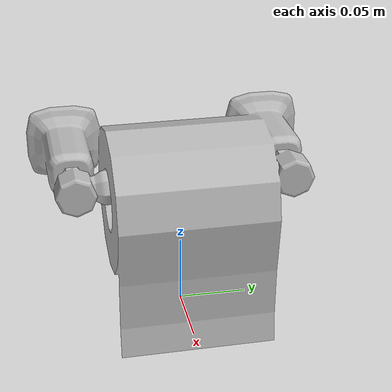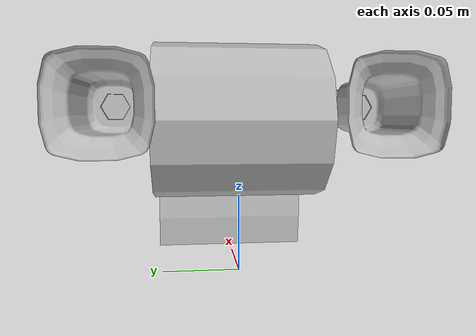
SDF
<?xml version='1.0'?>
<sdf version='1.4'>
  <model name='s__1321'>
    <pose>0 0 0 0 0 0</pose>
    <static>true</static>
    <link name='link'>
      <collision name='collision'>
        <pose>0 0 0 0 0 0</pose>
        <geometry>
          <box>
            <size>0.14 0.21 2</size>
          </box>
        </geometry>
      </collision>
      <visual name='visual'>
        <pose>0 0 0 0 0 0</pose>
        <geometry>
          <mesh><uri>model://s__1321/s__1321.dae</uri></mesh>
        </geometry>
      </visual>
    </link>
  </model>
</sdf>
